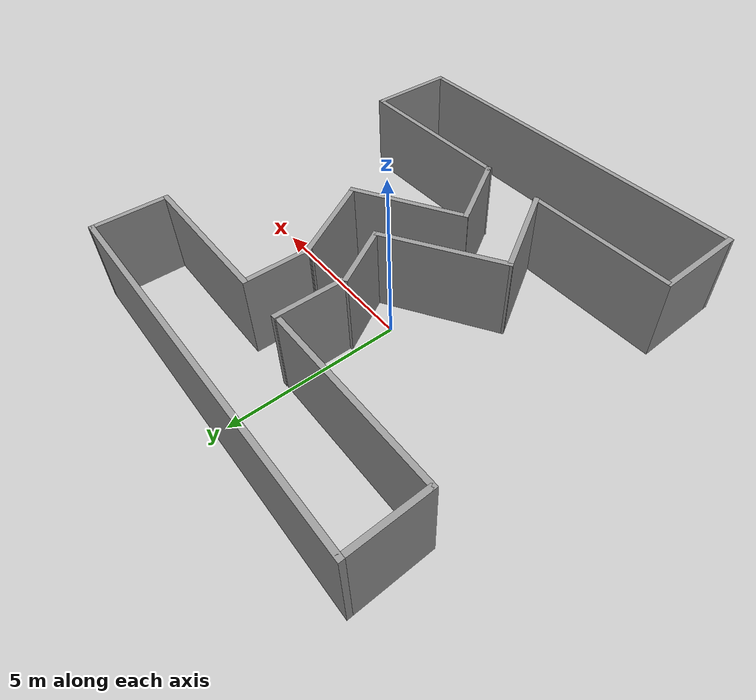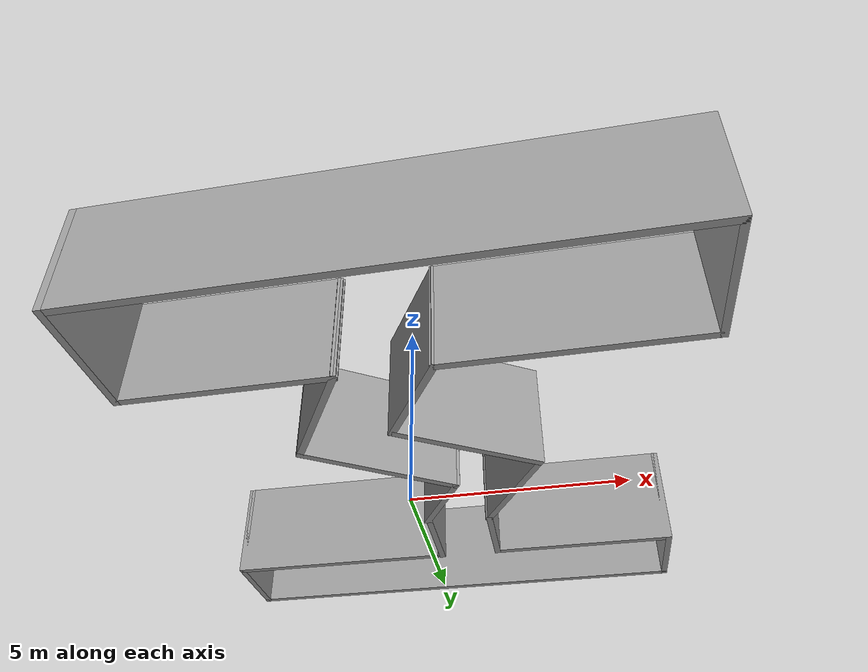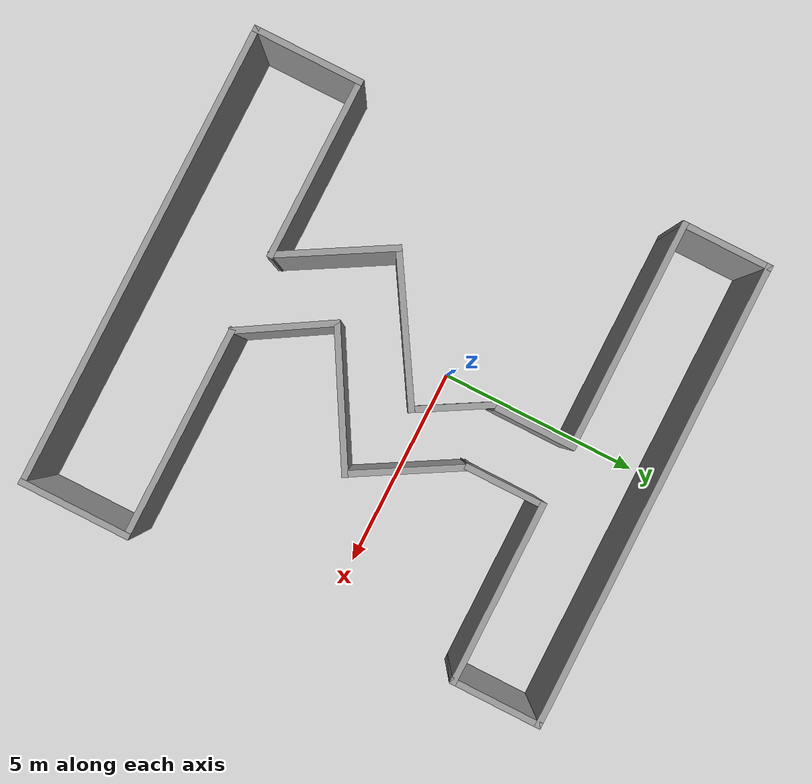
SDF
<?xml version='1.0'?>
<sdf version='1.7'>
  <model name='paper2'>
    <pose>0.587913 -1.06532 0 0 -0 0</pose>
    <link name='Wall_15'>
      <collision name='Wall_15_Collision'>
        <geometry>
          <box>
            <size>5.25 0.15 2.5</size>
          </box>
        </geometry>
        <pose>0 0 1.25 0 -0 0</pose>
      </collision>
      <visual name='Wall_15_Visual'>
        <pose>0 0 1.25 0 -0 0</pose>
        <geometry>
          <box>
            <size>5.25 0.15 2.5</size>
          </box>
        </geometry>
        <material>
          <script>
            <uri>file://media/materials/scripts/gazebo.material</uri>
            <name>Gazebo/Grey</name>
          </script>
          <ambient>1 1 1 1</ambient>
        </material>
        <meta>
          <layer>0</layer>
        </meta>
      </visual>
      <pose>3.34015 -3.70156 0 0 -0 0</pose>
    </link>
    <link name='Wall_16'>
      <collision name='Wall_16_Collision'>
        <geometry>
          <box>
            <size>2.75 0.15 2.5</size>
          </box>
        </geometry>
        <pose>0 0 1.25 0 -0 0</pose>
      </collision>
      <visual name='Wall_16_Visual'>
        <pose>0 0 1.25 0 -0 0</pose>
        <geometry>
          <box>
            <size>2.75 0.15 2.5</size>
          </box>
        </geometry>
        <material>
          <script>
            <uri>file://media/materials/scripts/gazebo.material</uri>
            <name>Gazebo/Grey</name>
          </script>
          <ambient>1 1 1 1</ambient>
        </material>
        <meta>
          <layer>0</layer>
        </meta>
      </visual>
      <pose>5.89015 -5.00157 0 0 -0 -1.5708</pose>
    </link>
    <link name='Wall_17'>
      <collision name='Wall_17_Collision'>
        <geometry>
          <box>
            <size>11.5 0.15 2.5</size>
          </box>
        </geometry>
        <pose>0 0 1.25 0 -0 0</pose>
      </collision>
      <visual name='Wall_17_Visual'>
        <pose>0 0 1.25 0 -0 0</pose>
        <geometry>
          <box>
            <size>11.5 0.15 2.5</size>
          </box>
        </geometry>
        <material>
          <script>
            <uri>file://media/materials/scripts/gazebo.material</uri>
            <name>Gazebo/Grey</name>
          </script>
          <ambient>1 1 1 1</ambient>
        </material>
        <meta>
          <layer>0</layer>
        </meta>
      </visual>
      <pose>0.215149 -6.30157 0 0 -0 3.14159</pose>
    </link>
    <link name='Wall_18'>
      <collision name='Wall_18_Collision'>
        <geometry>
          <box>
            <size>2.75 0.15 2.5</size>
          </box>
        </geometry>
        <pose>0 0 1.25 0 -0 0</pose>
      </collision>
      <visual name='Wall_18_Visual'>
        <pose>0 0 1.25 0 -0 0</pose>
        <geometry>
          <box>
            <size>2.75 0.15 2.5</size>
          </box>
        </geometry>
        <material>
          <script>
            <uri>file://media/materials/scripts/gazebo.material</uri>
            <name>Gazebo/Grey</name>
          </script>
          <ambient>1 1 1 1</ambient>
        </material>
        <meta>
          <layer>0</layer>
        </meta>
      </visual>
      <pose>-5.45985 -5.00157 0 0 -0 1.5708</pose>
    </link>
    <link name='Wall_19'>
      <collision name='Wall_19_Collision'>
        <geometry>
          <box>
            <size>4.5 0.15 2.5</size>
          </box>
        </geometry>
        <pose>0 0 1.25 0 -0 0</pose>
      </collision>
      <visual name='Wall_19_Visual'>
        <pose>0 0 1.25 0 -0 0</pose>
        <geometry>
          <box>
            <size>4.5 0.15 2.5</size>
          </box>
        </geometry>
        <material>
          <script>
            <uri>file://media/materials/scripts/gazebo.material</uri>
            <name>Gazebo/Grey</name>
          </script>
          <ambient>1 1 1 1</ambient>
        </material>
        <meta>
          <layer>0</layer>
        </meta>
      </visual>
      <pose>-3.28485 -3.70156 0 0 -0 0</pose>
    </link>
    <link name='Wall_29'>
      <collision name='Wall_29_Collision'>
        <geometry>
          <box>
            <size>3 0.15 2.5</size>
          </box>
        </geometry>
        <pose>0 0 1.25 0 -0 0</pose>
      </collision>
      <visual name='Wall_29_Visual'>
        <pose>0 0 1.25 0 -0 0</pose>
        <geometry>
          <box>
            <size>3 0.15 2.5</size>
          </box>
        </geometry>
        <material>
          <script>
            <uri>file://media/materials/scripts/gazebo.material</uri>
            <name>Gazebo/Grey</name>
          </script>
          <ambient>1 1 1 1</ambient>
        </material>
        <meta>
          <layer>0</layer>
        </meta>
      </visual>
      <pose>-1.82235 -2.46748 0 0 -0 2.0944</pose>
    </link>
    <link name='Wall_32'>
      <collision name='Wall_32_Collision'>
        <geometry>
          <box>
            <size>2.4884 0.15 2.5</size>
          </box>
        </geometry>
        <pose>0 0 1.25 0 -0 0</pose>
      </collision>
      <visual name='Wall_32_Visual'>
        <pose>0 0 1.25 0 -0 0</pose>
        <geometry>
          <box>
            <size>2.4884 0.15 2.5</size>
          </box>
        </geometry>
        <material>
          <script>
            <uri>file://media/materials/scripts/gazebo.material</uri>
            <name>Gazebo/Grey</name>
          </script>
          <ambient>1 1 1 1</ambient>
        </material>
        <meta>
          <layer>0</layer>
        </meta>
      </visual>
      <pose>0.186211 -2.70042 0 0 -0 2.1136</pose>
    </link>
    <link name='Wall_37'>
      <collision name='Wall_37_Collision'>
        <geometry>
          <box>
            <size>3.75117 0.15 2.5</size>
          </box>
        </geometry>
        <pose>0 0 1.25 0 -0 0</pose>
      </collision>
      <visual name='Wall_37_Visual'>
        <pose>0 0 1.25 0 -0 0</pose>
        <geometry>
          <box>
            <size>3.75117 0.15 2.5</size>
          </box>
        </geometry>
        <material>
          <script>
            <uri>file://media/materials/scripts/gazebo.material</uri>
            <name>Gazebo/Grey</name>
          </script>
          <ambient>1 1 1 1</ambient>
        </material>
        <meta>
          <layer>0</layer>
        </meta>
      </visual>
      <pose>-0.999005 -0.293555 0 0 -0 0.549149</pose>
    </link>
    <link name='Wall_38'>
      <collision name='Wall_38_Collision'>
        <geometry>
          <box>
            <size>2 0.15 2.5</size>
          </box>
        </geometry>
        <pose>0 0 1.25 0 -0 0</pose>
      </collision>
      <visual name='Wall_38_Visual'>
        <pose>0 0 1.25 0 -0 0</pose>
        <geometry>
          <box>
            <size>2 0.15 2.5</size>
          </box>
        </geometry>
        <material>
          <script>
            <uri>file://media/materials/scripts/gazebo.material</uri>
            <name>Gazebo/Grey</name>
          </script>
          <ambient>1 1 1 1</ambient>
        </material>
        <meta>
          <layer>0</layer>
        </meta>
      </visual>
      <pose>0.074341 1.44735 0 0 -0 2.0944</pose>
    </link>
    <link name='Wall_40'>
      <collision name='Wall_40_Collision'>
        <geometry>
          <box>
            <size>3.5 0.15 2.5</size>
          </box>
        </geometry>
        <pose>0 0 1.25 0 -0 0</pose>
      </collision>
      <visual name='Wall_40_Visual'>
        <pose>0 0 1.25 0 -0 0</pose>
        <geometry>
          <box>
            <size>3.5 0.15 2.5</size>
          </box>
        </geometry>
        <material>
          <script>
            <uri>file://media/materials/scripts/gazebo.material</uri>
            <name>Gazebo/Grey</name>
          </script>
          <ambient>1 1 1 1</ambient>
        </material>
        <meta>
          <layer>0</layer>
        </meta>
      </visual>
      <pose>1.03287 -0.855206 0 0 -0 0.523599</pose>
    </link>
    <link name='Wall_47'>
      <collision name='Wall_47_Collision'>
        <geometry>
          <box>
            <size>2.75 0.15 2.5</size>
          </box>
        </geometry>
        <pose>0 0 1.25 0 -0 0</pose>
      </collision>
      <visual name='Wall_47_Visual'>
        <pose>0 0 1.25 0 -0 0</pose>
        <geometry>
          <box>
            <size>2.75 0.15 2.5</size>
          </box>
        </geometry>
        <material>
          <script>
            <uri>file://media/materials/scripts/gazebo.material</uri>
            <name>Gazebo/Grey</name>
          </script>
          <ambient>1 1 1 1</ambient>
        </material>
        <meta>
          <layer>0</layer>
        </meta>
      </visual>
      <pose>1.75985 1.22573 0 0 -0 2.0944</pose>
    </link>
    <link name='Wall_58'>
      <collision name='Wall_58_Collision'>
        <geometry>
          <box>
            <size>2 0.15 2.5</size>
          </box>
        </geometry>
        <pose>0 0 1.25 0 -0 0</pose>
      </collision>
      <visual name='Wall_58_Visual'>
        <pose>0 0 1.25 0 -0 0</pose>
        <geometry>
          <box>
            <size>2 0.15 2.5</size>
          </box>
        </geometry>
        <material>
          <script>
            <uri>file://media/materials/scripts/gazebo.material</uri>
            <name>Gazebo/Grey</name>
          </script>
          <ambient>1 1 1 1</ambient>
        </material>
        <meta>
          <layer>0</layer>
        </meta>
      </visual>
      <pose>1.10985 3.27657 0 0 -0 1.5708</pose>
    </link>
    <link name='Wall_59'>
      <collision name='Wall_59_Collision'>
        <geometry>
          <box>
            <size>4.5 0.15 2.5</size>
          </box>
        </geometry>
        <pose>0 0 1.25 0 -0 0</pose>
      </collision>
      <visual name='Wall_59_Visual'>
        <pose>0 0 1.25 0 -0 0</pose>
        <geometry>
          <box>
            <size>4.5 0.15 2.5</size>
          </box>
        </geometry>
        <material>
          <script>
            <uri>file://media/materials/scripts/gazebo.material</uri>
            <name>Gazebo/Grey</name>
          </script>
          <ambient>1 1 1 1</ambient>
        </material>
        <meta>
          <layer>0</layer>
        </meta>
      </visual>
      <pose>3.28485 4.20157 0 0 -0 0</pose>
    </link>
    <link name='Wall_60'>
      <collision name='Wall_60_Collision'>
        <geometry>
          <box>
            <size>2.25 0.15 2.5</size>
          </box>
        </geometry>
        <pose>0 0 1.25 0 -0 0</pose>
      </collision>
      <visual name='Wall_60_Visual'>
        <pose>0 0 1.25 0 -0 0</pose>
        <geometry>
          <box>
            <size>2.25 0.15 2.5</size>
          </box>
        </geometry>
        <material>
          <script>
            <uri>file://media/materials/scripts/gazebo.material</uri>
            <name>Gazebo/Grey</name>
          </script>
          <ambient>1 1 1 1</ambient>
        </material>
        <meta>
          <layer>0</layer>
        </meta>
      </visual>
      <pose>5.45985 5.25157 0 0 -0 1.5708</pose>
    </link>
    <link name='Wall_61'>
      <collision name='Wall_61_Collision'>
        <geometry>
          <box>
            <size>11.5 0.15 2.5</size>
          </box>
        </geometry>
        <pose>0 0 1.25 0 -0 0</pose>
      </collision>
      <visual name='Wall_61_Visual'>
        <pose>0 0 1.25 0 -0 0</pose>
        <geometry>
          <box>
            <size>11.5 0.15 2.5</size>
          </box>
        </geometry>
        <material>
          <script>
            <uri>file://media/materials/scripts/gazebo.material</uri>
            <name>Gazebo/Grey</name>
          </script>
          <ambient>1 1 1 1</ambient>
        </material>
        <meta>
          <layer>0</layer>
        </meta>
      </visual>
      <pose>-0.215149 6.30157 0 0 -0 3.14159</pose>
    </link>
    <link name='Wall_62'>
      <collision name='Wall_62_Collision'>
        <geometry>
          <box>
            <size>2.25 0.15 2.5</size>
          </box>
        </geometry>
        <pose>0 0 1.25 0 -0 0</pose>
      </collision>
      <visual name='Wall_62_Visual'>
        <pose>0 0 1.25 0 -0 0</pose>
        <geometry>
          <box>
            <size>2.25 0.15 2.5</size>
          </box>
        </geometry>
        <material>
          <script>
            <uri>file://media/materials/scripts/gazebo.material</uri>
            <name>Gazebo/Grey</name>
          </script>
          <ambient>1 1 1 1</ambient>
        </material>
        <meta>
          <layer>0</layer>
        </meta>
      </visual>
      <pose>-5.89015 5.25157 0 0 -0 -1.5708</pose>
    </link>
    <link name='Wall_63'>
      <collision name='Wall_63_Collision'>
        <geometry>
          <box>
            <size>5.5 0.15 2.5</size>
          </box>
        </geometry>
        <pose>0 0 1.25 0 -0 0</pose>
      </collision>
      <visual name='Wall_63_Visual'>
        <pose>0 0 1.25 0 -0 0</pose>
        <geometry>
          <box>
            <size>5.5 0.15 2.5</size>
          </box>
        </geometry>
        <material>
          <script>
            <uri>file://media/materials/scripts/gazebo.material</uri>
            <name>Gazebo/Grey</name>
          </script>
          <ambient>1 1 1 1</ambient>
        </material>
        <meta>
          <layer>0</layer>
        </meta>
      </visual>
      <pose>-3.21515 4.20157 0 0 -0 0</pose>
    </link>
    <link name='Wall_74'>
      <collision name='Wall_74_Collision'>
        <geometry>
          <box>
            <size>2 0.15 2.5</size>
          </box>
        </geometry>
        <pose>0 0 1.25 0 -0 0</pose>
      </collision>
      <visual name='Wall_74_Visual'>
        <pose>0 0 1.25 0 -0 0</pose>
        <geometry>
          <box>
            <size>2 0.15 2.5</size>
          </box>
        </geometry>
        <material>
          <script>
            <uri>file://media/materials/scripts/gazebo.material</uri>
            <name>Gazebo/Grey</name>
          </script>
          <ambient>1 1 1 1</ambient>
        </material>
        <meta>
          <layer>0</layer>
        </meta>
      </visual>
      <pose>-0.351699 3.28848 0 0 -0 -1.5708</pose>
    </link>
    <static>1</static>
  </model>
</sdf>
